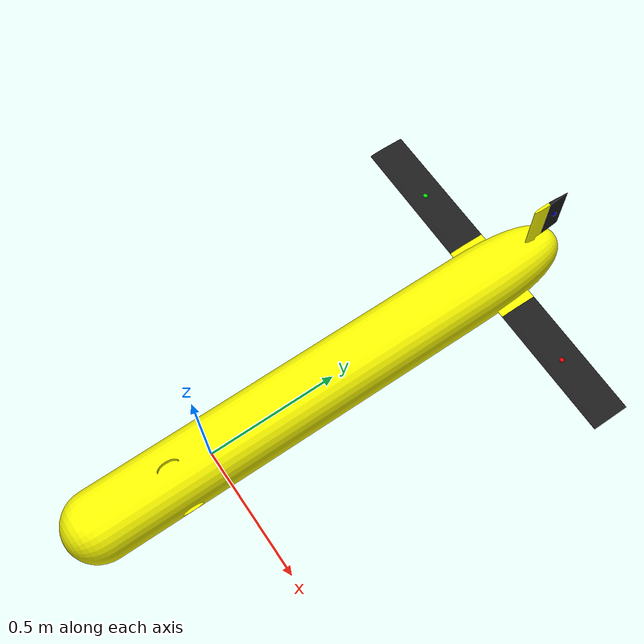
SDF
<?xml version="1.0"?>
<sdf version="1.7">
  <model name="glider_nautilus">

    <static>false</static>

    <!-- BASE LINK -->

    <link name="base_link">
      <inertial>
        <!-- Inertial without ACU -->

        <!-- Inertial with ACU -->

        <pose>0 0.52 -0.00768 0 0 0</pose>
        <mass>58.845</mass>
        <inertia>
          <ixx>10.24</ixx>
          <ixy>-0.004930</ixy>
          <ixz>0.003058</ixz>
          <iyy>0.902550</iyy>
          <iyz>0.027482</iyz>
          <izz>10.32</izz>
        </inertia>

      </inertial>

      <visual name="base_link_visual">
        <pose>0 0 0 0 0 0</pose>
        <geometry>
          <mesh>
            <!-- Model without wings and rudder. Frame corresponds to frame in
            OnShape master assembly (version without scientific unit) -->
            <uri>model://meshes/glider_nautilus/nautilus_glider_nw_v03.dae</uri>
          </mesh>
        </geometry>
        <material>
          <ambient>0.7 0. 0 0.5</ambient>
          <diffuse>1 1 0 1</diffuse>
          <specular>0.7 0.7 0 0.5</specular>
        </material>
      </visual>

      <!-- Box visualising where the bouyant volume of the
      hull is. Not functional -->

      <collision name="base_link_collision">
        <!-- This determines the buoyancy.
             Hull starts at base frame, centre 0.5m from base frame -->
        <pose>0 0.5 0 0 0 0</pose>
        <geometry>
          <box>
            <!-- Volume 0.053m^3 + 0.010098m^3 ie. volume of the hull
            plus the volume needed to compensate for neutrall buoyant parts-->
            <size>0.230217 1.190528 0.230217</size>
          </box>
        </geometry>
      </collision>
    </link>

    <plugin
      filename="gz-sim-hydrodynamics-system"
      name="gz::sim::systems::Hydrodynamics">
      <link_name>base_link</link_name>
      <water_density>1025.0</water_density>
      <!-- Added mass -->
      <xDotU>0</xDotU>
      <yDotV>0</yDotV>
      <zDotW>0</zDotW>
      <kDotP>0</kDotP>
      <mDotQ>0</mDotQ>
      <nDotR>0</nDotR>

      <!-- Linear Drag Coefficients -->
      <!-- diagonal terms -->
      <xU>-8</xU>
      <yV>-162</yV>
      <zW>-108</zW>
      <kP>-13</kP>
      <mQ>-20</mQ>
      <nR>-32</nR>
      <!-- cross terms -->

      <!-- Quadratic Drag Coefficients -->
      <xUabsU>0</xUabsU>
      <yVabsV>0</yVabsV>
      <zWabsW>0</zWabsW>
      <kPabsP>0</kPabsP>
      <mQabsQ>0</mQabsQ>
      <nRabsR>0</nRabsR>
    </plugin>

    <!-- LEFT FIN -->

    <link name="LeftFin_link">
      <!-- Frame for aerodynamic forces of left wing.
           For now simply rest at base link -->

      <visual name="LeftFin_visual">
        <geometry>
          <mesh>
            <uri>model://meshes/glider_nautilus/nautilus_glider_wing_l_v03.dae</uri>
          </mesh>
        </geometry>
        <material>
          <ambient>0.1 0.1 0.1 0.9</ambient>
          <diffuse>0.1 0.1 0.1 1</diffuse>
          <specular>0 0 0 0.9</specular>
        </material>
      </visual>

      <!-- The following visual element is for a sanity check on the
           centre of pressure passed to the lift drag plugin. Insert
           the same position in the pose tag. -->
      <visual name="centre_of_pressure_marker">
        <pose>0.408 1.205 0 0 0 0</pose>
        <geometry>
          <sphere>
            <radius>0.01</radius>
          </sphere>
        </geometry>
        <material>
          <ambient>0.9 0 0 0.9</ambient>
          <diffuse>0.9 0 0 0.9</diffuse>
          <specular>0 0 0 0.9</specular>
        </material>
      </visual>

    </link>

    <joint name="LeftFin_joint" type="fixed">
      <pose>0 0 0 0 0 0</pose>
      <parent>base_link</parent>
      <child>LeftFin_link</child>
    </joint>

    <plugin
      filename="gz-sim-lift-drag-system"
      name="gz::sim::systems::LiftDrag">
      <air_density>1025</air_density>
      <cla>4.13</cla>
      <cla_stall>-1.1</cla_stall>
      <cda>0.2</cda>
      <cda_stall>0.03</cda_stall>
      <alpha_stall>0.17</alpha_stall>
      <a0>0</a0>
      <area>0.0725</area>
      <upward>0 0 1</upward>
      <forward>0 -1 0</forward>
      <link_name>LeftFin_link</link_name>
      <!-- cp determines the centre of pressure in the link frame,
           i.e. wher the aerodynamic forces are applied -->
      <cp>0.408 1.205 0</cp>
    </plugin>

    <!-- RIGHT FIN -->

    <link name="RightFin_link">

      <visual name="RightFin_visual">
        <geometry>
          <mesh>
            <uri>model://meshes/glider_nautilus/nautilus_glider_wing_r_v03.dae</uri>
          </mesh>
        </geometry>
        <material>
          <ambient>0.1 0.1 0.1 0.9</ambient>
          <diffuse>0.1 0.1 0.1 1</diffuse>
          <specular>0 0 0 0.9</specular>
        </material>
      </visual>

      <!-- The following visual element is for a sanity check on the
           centre of pressure passed to the lift drag plugin. Insert
           the same position in the pose tag. -->
      <visual name="centre_of_pressure_marker">
        <pose>-0.408 1.205 0 0 0 0</pose>
        <geometry>
          <sphere>
            <radius>0.01</radius>
          </sphere>
        </geometry>
        <material>
          <ambient>0 0.9 0 0.9</ambient>
          <diffuse>0 0.9 0 0.9</diffuse>
          <specular>0 0 0 0.9</specular>
        </material>
      </visual>

    </link>

    <joint name="RightFin_joint" type="fixed">
      <pose>0 0 0 0 0 0</pose>
      <parent>base_link</parent>
      <child>RightFin_link</child>
    </joint>

    <plugin
      filename="gz-sim-lift-drag-system"
      name="gz::sim::systems::LiftDrag">
      <air_density>1025</air_density>
      <cla>4.13</cla>
      <cla_stall>-1.1</cla_stall>
      <cda>0.2</cda>
      <cda_stall>0.03</cda_stall>
      <alpha_stall>0.17</alpha_stall>
      <a0>0</a0>
      <area>0.0725</area>
      <upward>0 0 1</upward>
      <forward>0 -1 0</forward>
      <link_name>RightFin_link</link_name>
      <!-- cp determines the centre of pressure in the link frame,
           i.e. wher the aerodynamic forces are applied -->
      <cp>-0.408 1.205 0</cp>
    </plugin>

    <!-- TOP RUDDER -->

    <link name="TopRudder_link">

      <pose relative_to="TopRudder_joint">0 0 0 0 0 0</pose>

      <visual name="Rudder_visual">
        <geometry>
          <mesh>
            <uri>model://meshes/glider_nautilus/nautilus_glider_rudder_v04.dae</uri>
          </mesh>
        </geometry>
        <material>
          <ambient>0.1 0.1 0.1 0.9</ambient>
          <diffuse>0.1 0.1 0.1 1</diffuse>
          <specular>0 0 0 0.9</specular>
        </material>
      </visual>

      <!-- The following visual element is for a sanity check on the
           centre of pressure passed to the lift drag plugin. Insert
           the same position in the pose tag. -->
      <visual name="centre_of_pressure_marker">
        <pose relative_to="TopRudder_link">0 0.04 0.1 0 0 0</pose>
        <geometry>
          <sphere>
            <radius>0.01</radius>
          </sphere>
        </geometry>
        <material>
          <ambient>0 0 0.9 0.9</ambient>
          <diffuse>0 0 0.9 0.9</diffuse>
          <specular>0 0 0 0.9</specular>
        </material>
      </visual>

    </link>

    <joint name="TopRudder_joint" type="fixed">
      <pose relative_to="base_link">0 1.404 0.119 0 0 0</pose>
      <parent>base_link</parent>
      <child>TopRudder_link</child>
    </joint>

    <!-- Started to implement a movable rudder -->

    <!-- 0.5 was the initial set point of the PID position
     controller for the rudder -->

    <plugin
      filename="gz-sim-joint-state-publisher-system"
      name="gz::sim::systems::JointStatePublisher">
      <joint_name>TopRudder_joint</joint_name>
      <update_rate>2</update_rate>
    </plugin>

    <plugin
      filename="gz-sim-lift-drag-system"
      name="gz::sim::systems::LiftDrag">
      <air_density>1025</air_density>
      <cla>4.13</cla>
      <cla_stall>-1.1</cla_stall>
      <cda>0.2</cda>
      <cda_stall>0.03</cda_stall>
      <alpha_stall>0.17</alpha_stall>
      <a0>0</a0>
      <area>0.0244</area>
      <upward>0 1 0</upward>
      <forward>1 0 0</forward>
      <link_name>TopRudder_link</link_name>
      <cp>0 0.04 0.1</cp>
    </plugin>

    <!-- BLADDER -->

    <link name="bladder_link">
      <!-- Pose of bladder link in base link frame-->
      <pose>0 -0.105 0 0 0 0</pose>
      <visual name="bladder_link_visual">
        <geometry>
          <sphere>
            <radius>0.1</radius>
          </sphere>
        </geometry>
        <material>
          <ambient>0 0 1 1</ambient>
          <diffuse>0 0 1 0.5</diffuse>
          <specular>0 0 1 0.5</specular>
        </material>
      </visual>
    </link>

    <joint name="bladder_joint" type="fixed">
      <pose>0 0 0 0 0 0</pose>
      <parent>base_link</parent>
      <child>bladder_link</child>
    </joint>

    <!-- OIL MASS -->

    <link name="oil_weight_link">
      <!--Oil positioned in the middle between the
      tank and the bladder. Static. Position in base_link coord-->
      <pose>0 0.0855 -0.0185 0 0 0</pose>
      <visual name="oil_weight_marker">
        <pose>0 0 0 0 0 0</pose>
        <geometry>
          <sphere>
            <radius>0.01</radius>
          </sphere>
        </geometry>
      </visual>
      <inertial>
        <mass>2.1825</mass>
      </inertial>
    </link>

    <joint name="oil_weigth_joint" type="fixed">
      <pose>0 0 0 0 0 0</pose>
      <parent>base_link</parent>
      <child>oil_weight_link</child>
    </joint>

    <plugin
      filename="gz-sim-buoyancy-engine-system"
      name="gz::sim::systems::BuoyancyEngine">
      <link_name>bladder_link</link_name>
      <max_inflation_rate>0.0001</max_inflation_rate>
      <min_volume>0.0</min_volume>
      <max_volume>0.0025</max_volume>
      <neutral_volume>0.00</neutral_volume>
      <default_volume>0.00125</default_volume>
      <fluid_density>1025.0</fluid_density>
      <surface>0</surface>
      <namespace>glider_nautilus</namespace>
    </plugin>

    <!-- IMU -->

    <link name="imu_link">
      <inertial>
        <pose>0 0 0 0 0 0</pose>
        <inertia>
          <ixx>0.00001</ixx>
          <ixy>0.0</ixy>
          <ixz>0.0</ixz>
          <iyy>0.00001</iyy>
          <iyz>0.0</iyz>
          <izz>0.00001</izz>
        </inertia>
      </inertial>
      <sensor name="imu_sensor" type="imu">
        <always_on>true</always_on>
        <update_rate>50.0</update_rate>
        <topic>/model/glider_nautilus/imu</topic>
      </sensor>
    </link>

    <joint name="imu_joint" type="fixed">
      <pose>0 0 0 0 0 0</pose>
      <parent>base_link</parent>
      <child>imu_link</child>
    </joint>

    <plugin
      filename="gz-sim-imu-system"
      name="gz::sim::systems::Imu">
    </plugin>

    <!-- BATTERY -->

    <link name='battery_link'>
      <!-- Inertial properties of battery accounted for in the
           inertial properties of the base link  -->
      <battery name='battery'>
        <voltage>4.2</voltage>
      </battery>
    </link>

    <joint name='battery_joint' type='fixed'>
      <pose>0 0 0 0 0 0</pose>
      <parent>base_link</parent>
      <child>battery_link</child>
    </joint>

    <plugin
      filename="gz-sim-linearbatteryplugin-system"
      name="gz::sim::systems::LinearBatteryPlugin">
      <battery_name>battery</battery_name>
      <voltage>4.2</voltage>
      <open_circuit_voltage_constant_coef>3.7</open_circuit_voltage_constant_coef>
      <open_circuit_voltage_linear_coef>-3.1424</open_circuit_voltage_linear_coef>
      <initial_charge>4.32</initial_charge>
      <capacity>4.8</capacity>
      <resistance>0.002</resistance>
      <smooth_current_tau>1.9499</smooth_current_tau>
      <enable_recharge>false</enable_recharge>
      <power_load>10</power_load>
      <start_on_motion>true</start_on_motion>
    </plugin>

    <!-- NAVSAT -->

    <link name="navsat_link">
      <inertial>
        <pose>0 0 0 0 0 0</pose>
        <mass>0.001</mass>
        <inertia>
          <ixx>0.00001</ixx>
          <ixy>0.0</ixy>
          <ixz>0.0</ixz>
          <iyy>0.00001</iyy>
          <iyz>0.0</iyz>
          <izz>0.00001</izz>
        </inertia>
      </inertial>

      <sensor name="navsat_sensor" type="navsat">
        <always_on>true</always_on>
        <update_rate>30.0</update_rate>
        <topic>/model/glider_nautilus/navsat</topic>
      </sensor>
    </link>

    <joint name="navsat_joint" type="fixed">
      <pose>0 0 0 0 0 0</pose>
      <parent>base_link</parent>
      <child>navsat_link</child>
    </joint>

    <plugin
      filename="gz-sim-navsat-system"
      name="gz::sim::systems::NavSat">
    </plugin>

    <!-- OTHER PLUGINS -->

    <plugin
      filename="gz-sim-odometry-publisher-system"
      name="gz::sim::systems::OdometryPublisher">
      <odom_frame>map</odom_frame>
      <robot_base_frame>base_link</robot_base_frame>
      <dimensions>3</dimensions>
      <odom_publish_frequency>100</odom_publish_frequency>
    </plugin>

    <plugin
      filename="gz-sim-joint-state-publisher-system"
      name="gz::sim::systems::JointStatePublisher">
    </plugin>

    <!-- Sea Pressure Sensor Plugin -->
    <plugin
      filename="sea_pressure_sensor"
      name=" dave_gz_sensor_plugins::SubseaPressureSensorPlugin">
      <namespace>glider_nautilus</namespace>
      <topic>sea_pressure</topic>
      <update_rate>10</update_rate>
      <noise_sigma>3.0</noise_sigma>
      <estimate_depth_on>true</estimate_depth_on>
      <standard_pressure>101.325</standard_pressure>
      <kPa_per_meter>9.80638</kPa_per_meter>
    </plugin>

  </model>
</sdf>
